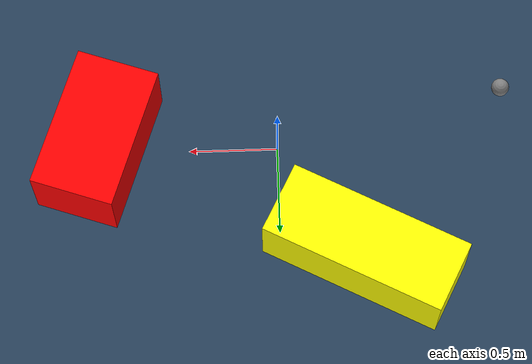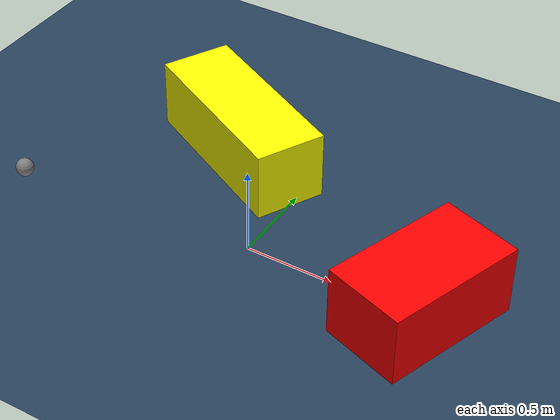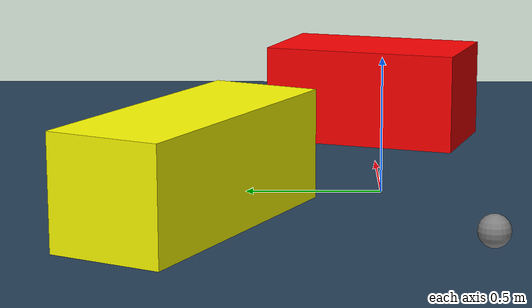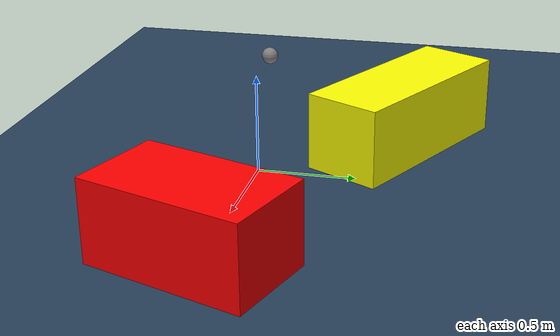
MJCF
<?xml version="1.0" ?>
<mujoco model="generated_environment">
  <option timestep="0.01" integrator="RK4" cone="elliptic"/>
  <default>
    <geom density="1"/>
  </default>
  <asset>
    <texture builtin="gradient" height="3072" rgb1="0.3 0.5 0.7" rgb2="0 0 0" type="skybox" width="512"/>
    <texture builtin="checker" height="300" mark="edge" markrgb="0.8 0.8 0.8" name="groundplane" rgb1="0.2 0.3 0.4" rgb2="0.1 0.2 0.3" type="2d" width="300"/>
    <material name="groundplane" reflectance="0.2" texrepeat="5 5" texture="groundplane" texuniform="true"/>
    <material name="robot" rgba="0.0 1.0 0.0 1"/>
  </asset>
  <worldbody>
    <light dir="0 0 -1" directional="true" pos="0 0 1.5"/>
    <geom condim="4" friction="1.0 0.005 0.001" material="groundplane" name="floor" size="0 0 0.05" type="plane"/>
    <body name="walls"/>
    <body name="robot">
      <joint name="joint_x" type="slide" pos="0 0 0" axis="1 0 0"/>
      <joint name="joint_y" type="slide" pos="0 0 0" axis="0 1 0"/>
      <geom name="robot" type="sphere" pos="-1.2699940023985985 -0.26093632079991314 0.2" size="0.05" mass="5." friction="1.0 0.005 0.0001" condim="4"/>
      <site name="sensor_ball"/>
    </body>
    <body name="obstacle_1_movable">
      <geom name="obstacle_1_movable" condim="4" pos="-0.46045217553108864 0.6674061915126517 0.2" euler="0 0 62.5697806341207" friction="1.0 0.005 0.001" rgba="1 1 0 1" size="0.20508440889743632 0.5271039761510967 0.2" type="box" mass="0.1"/>
      <joint type="free"/>
    </body>
    <body name="obstacle_2_static">
      <geom name="obstacle_2_static" condim="4" pos="1.0064123784621033 -0.013587125181247384 0.2" euler="0 0 71.08971332347721" friction="1.0 0.005 0.001" rgba="1 0 0 1" size="0.4029473120288627 0.23519126488654823 0.2" type="box"/>
    </body>
  </worldbody>
  <actuator>
    <motor name="actuator_x" joint="joint_x" gear="1" ctrlrange="-1 1"/>
    <motor name="actuator_y" joint="joint_y" gear="1" ctrlrange="-1 1"/>
  </actuator>
</mujoco>
